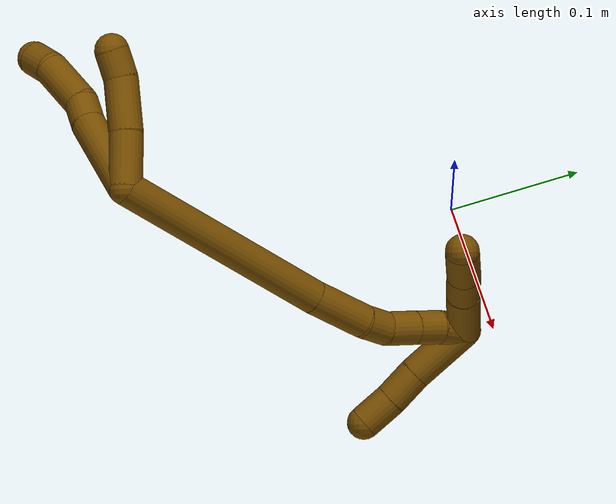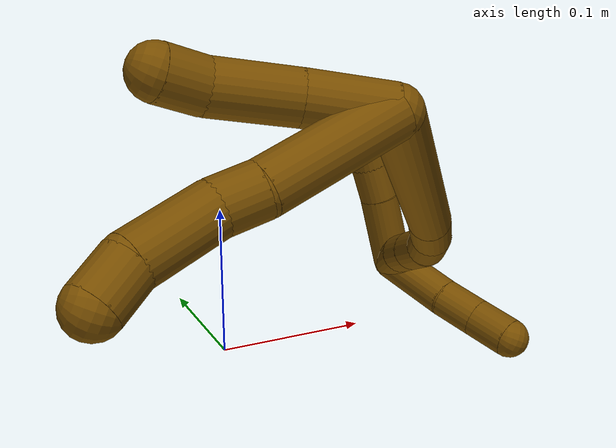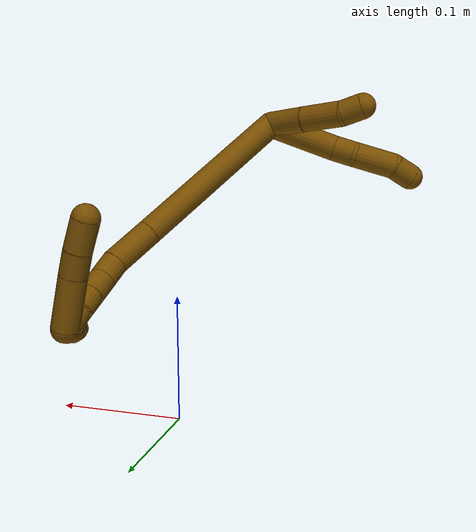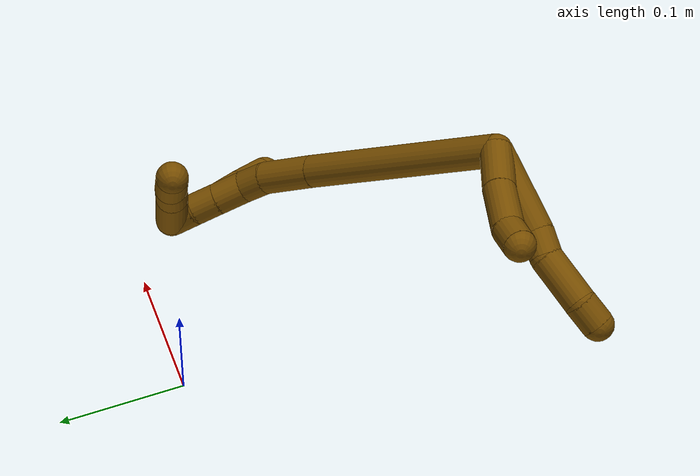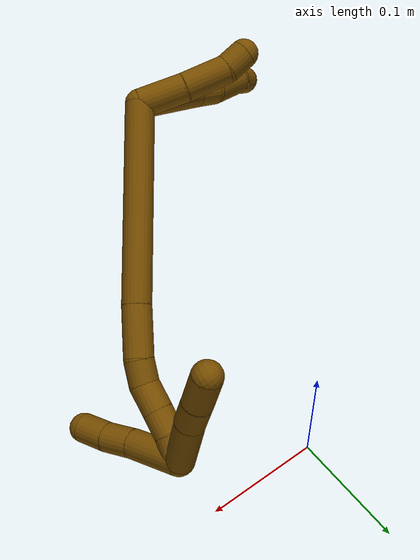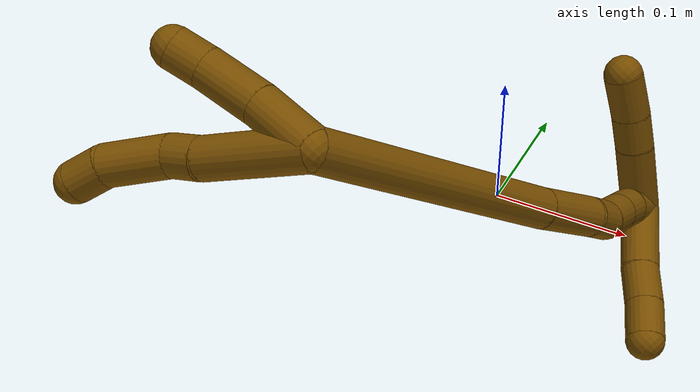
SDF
<sdf version="1.7">
 <world name="default">
  <model name="12">
   <static>0</static>
   <link name="12">
    <collision name="collision-cylinder-e_1_2_8">
     <pose>0.002678 -0.025815 -0.021789 2.27182 0.079124 0.170002</pose>
     <geometry><cylinder><radius>0.0125</radius><length>0.067774</length></cylinder></geometry>
     <surface>
      <friction><ode><mu>1.16</mu><mu2>1.16</mu2><slip1>0</slip1><slip2>0</slip2></ode></friction>
      <contact><ode><kp>1e+06</kp><kd>1</kd><max_vel>0</max_vel><min_depth>0.001</min_depth></ode></contact>
     </surface>
    </collision>
    <visual name="visual-cylinder-e_1_2_8">
     <pose>0.002678 -0.025815 -0.021789 2.27182 0.079124 0.170002</pose>
     <geometry><cylinder><radius>0.0125</radius><length>0.067774</length></cylinder></geometry>
     <material><ambient>0.466667 0.301961 0 1</ambient></material>
    </visual>
    <collision name="collision-cylinder-e_2_8_9">
     <pose>0.007171 -0.058255 -0.051063 2.41711 0.179482 0.46625</pose>
     <geometry><cylinder><radius>0.0125</radius><length>0.02032</length></cylinder></geometry>
     <surface>
      <friction><ode><mu>1.16</mu><mu2>1.16</mu2><slip1>0</slip1><slip2>0</slip2></ode></friction>
      <contact><ode><kp>1e+06</kp><kd>1</kd><max_vel>0</max_vel><min_depth>0.001</min_depth></ode></contact>
     </surface>
    </collision>
    <visual name="visual-cylinder-e_2_8_9">
     <pose>0.007171 -0.058255 -0.051063 2.41711 0.179482 0.46625</pose>
     <geometry><cylinder><radius>0.0125</radius><length>0.02032</length></cylinder></geometry>
     <material><ambient>0.466667 0.301961 0 1</ambient></material>
    </visual>
    <collision name="collision-cylinder-e_3_9_10">
     <pose>0.007151 -0.081015 -0.070844 2.22194 -0.090153 -0.181664</pose>
     <geometry><cylinder><radius>0.0125</radius><length>0.040735</length></cylinder></geometry>
     <surface>
      <friction><ode><mu>1.16</mu><mu2>1.16</mu2><slip1>0</slip1><slip2>0</slip2></ode></friction>
      <contact><ode><kp>1e+06</kp><kd>1</kd><max_vel>0</max_vel><min_depth>0.001</min_depth></ode></contact>
     </surface>
    </collision>
    <visual name="visual-cylinder-e_3_9_10">
     <pose>0.007151 -0.081015 -0.070844 2.22194 -0.090153 -0.181664</pose>
     <geometry><cylinder><radius>0.0125</radius><length>0.040735</length></cylinder></geometry>
     <material><ambient>0.466667 0.301961 0 1</ambient></material>
    </visual>
    <collision name="collision-cylinder-e_4_10_6">
     <pose>0.004857 -0.107109 -0.086693 1.91356 -0.043506 -0.061708</pose>
     <geometry><cylinder><radius>0.0125</radius><length>0.021171</length></cylinder></geometry>
     <surface>
      <friction><ode><mu>1.16</mu><mu2>1.16</mu2><slip1>0</slip1><slip2>0</slip2></ode></friction>
      <contact><ode><kp>1e+06</kp><kd>1</kd><max_vel>0</max_vel><min_depth>0.001</min_depth></ode></contact>
     </surface>
    </collision>
    <visual name="visual-cylinder-e_4_10_6">
     <pose>0.004857 -0.107109 -0.086693 1.91356 -0.043506 -0.061708</pose>
     <geometry><cylinder><radius>0.0125</radius><length>0.021171</length></cylinder></geometry>
     <material><ambient>0.466667 0.301961 0 1</ambient></material>
    </visual>
    <collision name="collision-cylinder-e_1_2_11">
     <pose>0.003787 -0.003651 -0.019165 2.95334 0.191709 1.58911</pose>
     <geometry><cylinder><radius>0.0125</radius><length>0.039749</length></cylinder></geometry>
     <surface>
      <friction><ode><mu>1.16</mu><mu2>1.16</mu2><slip1>0</slip1><slip2>0</slip2></ode></friction>
      <contact><ode><kp>1e+06</kp><kd>1</kd><max_vel>0</max_vel><min_depth>0.001</min_depth></ode></contact>
     </surface>
    </collision>
    <visual name="visual-cylinder-e_1_2_11">
     <pose>0.003787 -0.003651 -0.019165 2.95334 0.191709 1.58911</pose>
     <geometry><cylinder><radius>0.0125</radius><length>0.039749</length></cylinder></geometry>
     <material><ambient>0.466667 0.301961 0 1</ambient></material>
    </visual>
    <collision name="collision-cylinder-e_2_11_12">
     <pose>0.009718 -0.012232 -0.057292 2.88722 0.109009 0.806546</pose>
     <geometry><cylinder><radius>0.0125</radius><length>0.039417</length></cylinder></geometry>
     <surface>
      <friction><ode><mu>1.16</mu><mu2>1.16</mu2><slip1>0</slip1><slip2>0</slip2></ode></friction>
      <contact><ode><kp>1e+06</kp><kd>1</kd><max_vel>0</max_vel><min_depth>0.001</min_depth></ode></contact>
     </surface>
    </collision>
    <visual name="visual-cylinder-e_2_11_12">
     <pose>0.009718 -0.012232 -0.057292 2.88722 0.109009 0.806546</pose>
     <geometry><cylinder><radius>0.0125</radius><length>0.039417</length></cylinder></geometry>
     <material><ambient>0.466667 0.301961 0 1</ambient></material>
    </visual>
    <collision name="collision-cylinder-e_3_12_5">
     <pose>0.009874 -0.019329 -0.086247 2.92805 -0.192001 -1.46391</pose>
     <geometry><cylinder><radius>0.0125</radius><length>0.020835</length></cylinder></geometry>
     <surface>
      <friction><ode><mu>1.16</mu><mu2>1.16</mu2><slip1>0</slip1><slip2>0</slip2></ode></friction>
      <contact><ode><kp>1e+06</kp><kd>1</kd><max_vel>0</max_vel><min_depth>0.001</min_depth></ode></contact>
     </surface>
    </collision>
    <visual name="visual-cylinder-e_3_12_5">
     <pose>0.009874 -0.019329 -0.086247 2.92805 -0.192001 -1.46391</pose>
     <geometry><cylinder><radius>0.0125</radius><length>0.020835</length></cylinder></geometry>
     <material><ambient>0.466667 0.301961 0 1</ambient></material>
    </visual>
    <collision name="collision-cylinder-e_1_2_13">
     <pose>0.071291 0.012603 0.044131 -0.278181 0.998809 -0.152446</pose>
     <geometry><cylinder><radius>0.0125</radius><length>0.169573</length></cylinder></geometry>
     <surface>
      <friction><ode><mu>1.16</mu><mu2>1.16</mu2><slip1>0</slip1><slip2>0</slip2></ode></friction>
      <contact><ode><kp>1e+06</kp><kd>1</kd><max_vel>0</max_vel><min_depth>0.001</min_depth></ode></contact>
     </surface>
    </collision>
    <visual name="visual-cylinder-e_1_2_13">
     <pose>0.071291 0.012603 0.044131 -0.278181 0.998809 -0.152446</pose>
     <geometry><cylinder><radius>0.0125</radius><length>0.169573</length></cylinder></geometry>
     <material><ambient>0.466667 0.301961 0 1</ambient></material>
    </visual>
    <collision name="collision-cylinder-e_2_13_14">
     <pose>0.161619 0.029013 0.0985 -0.355942 1.04991 -0.207602</pose>
     <geometry><cylinder><radius>0.0125</radius><length>0.043897</length></cylinder></geometry>
     <surface>
      <friction><ode><mu>1.16</mu><mu2>1.16</mu2><slip1>0</slip1><slip2>0</slip2></ode></friction>
      <contact><ode><kp>1e+06</kp><kd>1</kd><max_vel>0</max_vel><min_depth>0.001</min_depth></ode></contact>
     </surface>
    </collision>
    <visual name="visual-cylinder-e_2_13_14">
     <pose>0.161619 0.029013 0.0985 -0.355942 1.04991 -0.207602</pose>
     <geometry><cylinder><radius>0.0125</radius><length>0.043897</length></cylinder></geometry>
     <material><ambient>0.466667 0.301961 0 1</ambient></material>
    </visual>
    <collision name="collision-cylinder-e_3_14_15">
     <pose>0.190388 0.03307 0.112185 -0.072788 1.22955 -0.051403</pose>
     <geometry><cylinder><radius>0.0125</radius><length>0.020654</length></cylinder></geometry>
     <surface>
      <friction><ode><mu>1.16</mu><mu2>1.16</mu2><slip1>0</slip1><slip2>0</slip2></ode></friction>
      <contact><ode><kp>1e+06</kp><kd>1</kd><max_vel>0</max_vel><min_depth>0.001</min_depth></ode></contact>
     </surface>
    </collision>
    <visual name="visual-cylinder-e_3_14_15">
     <pose>0.190388 0.03307 0.112185 -0.072788 1.22955 -0.051403</pose>
     <geometry><cylinder><radius>0.0125</radius><length>0.020654</length></cylinder></geometry>
     <material><ambient>0.466667 0.301961 0 1</ambient></material>
    </visual>
    <collision name="collision-cylinder-e_4_15_16">
     <pose>0.211815 0.035224 0.116179 -1.29068 1.40309 -1.13313</pose>
     <geometry><cylinder><radius>0.0125</radius><length>0.023722</length></cylinder></geometry>
     <surface>
      <friction><ode><mu>1.16</mu><mu2>1.16</mu2><slip1>0</slip1><slip2>0</slip2></ode></friction>
      <contact><ode><kp>1e+06</kp><kd>1</kd><max_vel>0</max_vel><min_depth>0.001</min_depth></ode></contact>
     </surface>
    </collision>
    <visual name="visual-cylinder-e_4_15_16">
     <pose>0.211815 0.035224 0.116179 -1.29068 1.40309 -1.13313</pose>
     <geometry><cylinder><radius>0.0125</radius><length>0.023722</length></cylinder></geometry>
     <material><ambient>0.466667 0.301961 0 1</ambient></material>
    </visual>
    <collision name="collision-cylinder-e_5_16_17">
     <pose>0.2336 0.038738 0.117338 -1.20806 1.40164 -1.05446</pose>
     <geometry><cylinder><radius>0.0125</radius><length>0.020474</length></cylinder></geometry>
     <surface>
      <friction><ode><mu>1.16</mu><mu2>1.16</mu2><slip1>0</slip1><slip2>0</slip2></ode></friction>
      <contact><ode><kp>1e+06</kp><kd>1</kd><max_vel>0</max_vel><min_depth>0.001</min_depth></ode></contact>
     </surface>
    </collision>
    <visual name="visual-cylinder-e_5_16_17">
     <pose>0.2336 0.038738 0.117338 -1.20806 1.40164 -1.05446</pose>
     <geometry><cylinder><radius>0.0125</radius><length>0.020474</length></cylinder></geometry>
     <material><ambient>0.466667 0.301961 0 1</ambient></material>
    </visual>
    <collision name="collision-cylinder-e_6_17_1">
     <pose>0.254313 0.041067 0.119993 -0.337618 1.36966 -0.276597</pose>
     <geometry><cylinder><radius>0.0125</radius><length>0.021679</length></cylinder></geometry>
     <surface>
      <friction><ode><mu>1.16</mu><mu2>1.16</mu2><slip1>0</slip1><slip2>0</slip2></ode></friction>
      <contact><ode><kp>1e+06</kp><kd>1</kd><max_vel>0</max_vel><min_depth>0.001</min_depth></ode></contact>
     </surface>
    </collision>
    <visual name="visual-cylinder-e_6_17_1">
     <pose>0.254313 0.041067 0.119993 -0.337618 1.36966 -0.276597</pose>
     <geometry><cylinder><radius>0.0125</radius><length>0.021679</length></cylinder></geometry>
     <material><ambient>0.466667 0.301961 0 1</ambient></material>
    </visual>
    <collision name="collision-cylinder-e_1_1_18">
     <pose>0.253416 0.057036 0.107291 -2.33932 -0.497375 1.07898</pose>
     <geometry><cylinder><radius>0.0125</radius><length>0.048279</length></cylinder></geometry>
     <surface>
      <friction><ode><mu>1.16</mu><mu2>1.16</mu2><slip1>0</slip1><slip2>0</slip2></ode></friction>
      <contact><ode><kp>1e+06</kp><kd>1</kd><max_vel>0</max_vel><min_depth>0.001</min_depth></ode></contact>
     </surface>
    </collision>
    <visual name="visual-cylinder-e_1_1_18">
     <pose>0.253416 0.057036 0.107291 -2.33932 -0.497375 1.07898</pose>
     <geometry><cylinder><radius>0.0125</radius><length>0.048279</length></cylinder></geometry>
     <material><ambient>0.466667 0.301961 0 1</ambient></material>
    </visual>
    <collision name="collision-cylinder-e_2_18_19">
     <pose>0.23697 0.079463 0.084975 -2.38297 -0.441465 1.02542</pose>
     <geometry><cylinder><radius>0.0125</radius><length>0.023071</length></cylinder></geometry>
     <surface>
      <friction><ode><mu>1.16</mu><mu2>1.16</mu2><slip1>0</slip1><slip2>0</slip2></ode></friction>
      <contact><ode><kp>1e+06</kp><kd>1</kd><max_vel>0</max_vel><min_depth>0.001</min_depth></ode></contact>
     </surface>
    </collision>
    <visual name="visual-cylinder-e_2_18_19">
     <pose>0.23697 0.079463 0.084975 -2.38297 -0.441465 1.02542</pose>
     <geometry><cylinder><radius>0.0125</radius><length>0.023071</length></cylinder></geometry>
     <material><ambient>0.466667 0.301961 0 1</ambient></material>
    </visual>
    <collision name="collision-cylinder-e_3_19_4">
     <pose>0.225407 0.09484 0.067715 -2.43919 -0.481551 1.18083</pose>
     <geometry><cylinder><radius>0.0125</radius><length>0.02865</length></cylinder></geometry>
     <surface>
      <friction><ode><mu>1.16</mu><mu2>1.16</mu2><slip1>0</slip1><slip2>0</slip2></ode></friction>
      <contact><ode><kp>1e+06</kp><kd>1</kd><max_vel>0</max_vel><min_depth>0.001</min_depth></ode></contact>
     </surface>
    </collision>
    <visual name="visual-cylinder-e_3_19_4">
     <pose>0.225407 0.09484 0.067715 -2.43919 -0.481551 1.18083</pose>
     <geometry><cylinder><radius>0.0125</radius><length>0.02865</length></cylinder></geometry>
     <material><ambient>0.466667 0.301961 0 1</ambient></material>
    </visual>
    <collision name="collision-cylinder-e_1_1_20">
     <pose>0.250304 0.030411 0.137211 0.643152 -0.657119 -0.226176</pose>
     <geometry><cylinder><radius>0.0125</radius><length>0.047902</length></cylinder></geometry>
     <surface>
      <friction><ode><mu>1.16</mu><mu2>1.16</mu2><slip1>0</slip1><slip2>0</slip2></ode></friction>
      <contact><ode><kp>1e+06</kp><kd>1</kd><max_vel>0</max_vel><min_depth>0.001</min_depth></ode></contact>
     </surface>
    </collision>
    <visual name="visual-cylinder-e_1_1_20">
     <pose>0.250304 0.030411 0.137211 0.643152 -0.657119 -0.226176</pose>
     <geometry><cylinder><radius>0.0125</radius><length>0.047902</length></cylinder></geometry>
     <material><ambient>0.466667 0.301961 0 1</ambient></material>
    </visual>
    <collision name="collision-cylinder-e_2_20_21">
     <pose>0.228156 0.013701 0.16159 0.525534 -0.615088 -0.170458</pose>
     <geometry><cylinder><radius>0.0125</radius><length>0.026057</length></cylinder></geometry>
     <surface>
      <friction><ode><mu>1.16</mu><mu2>1.16</mu2><slip1>0</slip1><slip2>0</slip2></ode></friction>
      <contact><ode><kp>1e+06</kp><kd>1</kd><max_vel>0</max_vel><min_depth>0.001</min_depth></ode></contact>
     </surface>
    </collision>
    <visual name="visual-cylinder-e_2_20_21">
     <pose>0.228156 0.013701 0.16159 0.525534 -0.615088 -0.170458</pose>
     <geometry><cylinder><radius>0.0125</radius><length>0.026057</length></cylinder></geometry>
     <material><ambient>0.466667 0.301961 0 1</ambient></material>
    </visual>
    <collision name="collision-cylinder-e_3_21_3">
     <pose>0.212104 0.002829 0.178925 0.597633 -0.714697 -0.229025</pose>
     <geometry><cylinder><radius>0.0125</radius><length>0.026041</length></cylinder></geometry>
     <surface>
      <friction><ode><mu>1.16</mu><mu2>1.16</mu2><slip1>0</slip1><slip2>0</slip2></ode></friction>
      <contact><ode><kp>1e+06</kp><kd>1</kd><max_vel>0</max_vel><min_depth>0.001</min_depth></ode></contact>
     </surface>
    </collision>
    <visual name="visual-cylinder-e_3_21_3">
     <pose>0.212104 0.002829 0.178925 0.597633 -0.714697 -0.229025</pose>
     <geometry><cylinder><radius>0.0125</radius><length>0.026041</length></cylinder></geometry>
     <material><ambient>0.466667 0.301961 0 1</ambient></material>
    </visual>
    <collision name="collision-sphere-3">
     <pose>0.203571 -0.002705 0.187054 0 -0 0</pose>
     <geometry><sphere><radius>0.0125</radius></sphere></geometry>
     <surface>
      <friction><ode><mu>1.16</mu><mu2>1.16</mu2><slip1>0</slip1><slip2>0</slip2></ode></friction>
      <contact><ode><kp>1e+06</kp><kd>1</kd><max_vel>0</max_vel><min_depth>0.001</min_depth></ode></contact>
     </surface>
    </collision>
    <visual name="visual-sphere-3">
     <pose>0.203571 -0.002705 0.187054 0 -0 0</pose>
     <geometry><sphere><radius>0.0125</radius></sphere></geometry>
     <material><ambient>0.466667 0.301961 0 1</ambient></material>
    </visual>
    <collision name="collision-sphere-21">
     <pose>0.220638 0.008363 0.170795 0 -0 0</pose>
     <geometry><sphere><radius>0.0125</radius></sphere></geometry>
     <surface>
      <friction><ode><mu>1.16</mu><mu2>1.16</mu2><slip1>0</slip1><slip2>0</slip2></ode></friction>
      <contact><ode><kp>1e+06</kp><kd>1</kd><max_vel>0</max_vel><min_depth>0.001</min_depth></ode></contact>
     </surface>
    </collision>
    <visual name="visual-sphere-21">
     <pose>0.220638 0.008363 0.170795 0 -0 0</pose>
     <geometry><sphere><radius>0.0125</radius></sphere></geometry>
     <material><ambient>0.466667 0.301961 0 1</ambient></material>
    </visual>
    <collision name="collision-sphere-20">
     <pose>0.235673 0.019039 0.152386 0 -0 0</pose>
     <geometry><sphere><radius>0.0125</radius></sphere></geometry>
     <surface>
      <friction><ode><mu>1.16</mu><mu2>1.16</mu2><slip1>0</slip1><slip2>0</slip2></ode></friction>
      <contact><ode><kp>1e+06</kp><kd>1</kd><max_vel>0</max_vel><min_depth>0.001</min_depth></ode></contact>
     </surface>
    </collision>
    <visual name="visual-sphere-20">
     <pose>0.235673 0.019039 0.152386 0 -0 0</pose>
     <geometry><sphere><radius>0.0125</radius></sphere></geometry>
     <material><ambient>0.466667 0.301961 0 1</ambient></material>
    </visual>
    <collision name="collision-sphere-4">
     <pose>0.218772 0.103042 0.058024 0 -0 0</pose>
     <geometry><sphere><radius>0.0125</radius></sphere></geometry>
     <surface>
      <friction><ode><mu>1.16</mu><mu2>1.16</mu2><slip1>0</slip1><slip2>0</slip2></ode></friction>
      <contact><ode><kp>1e+06</kp><kd>1</kd><max_vel>0</max_vel><min_depth>0.001</min_depth></ode></contact>
     </surface>
    </collision>
    <visual name="visual-sphere-4">
     <pose>0.218772 0.103042 0.058024 0 -0 0</pose>
     <geometry><sphere><radius>0.0125</radius></sphere></geometry>
     <material><ambient>0.466667 0.301961 0 1</ambient></material>
    </visual>
    <collision name="collision-sphere-11">
     <pose>0.007574 -0.007302 -0.038331 0 -0 0</pose>
     <geometry><sphere><radius>0.0125</radius></sphere></geometry>
     <surface>
      <friction><ode><mu>1.16</mu><mu2>1.16</mu2><slip1>0</slip1><slip2>0</slip2></ode></friction>
      <contact><ode><kp>1e+06</kp><kd>1</kd><max_vel>0</max_vel><min_depth>0.001</min_depth></ode></contact>
     </surface>
    </collision>
    <visual name="visual-sphere-11">
     <pose>0.007574 -0.007302 -0.038331 0 -0 0</pose>
     <geometry><sphere><radius>0.0125</radius></sphere></geometry>
     <material><ambient>0.466667 0.301961 0 1</ambient></material>
    </visual>
    <collision name="collision-sphere-6">
     <pose>0.004396 -0.11707 -0.090247 0 -0 0</pose>
     <geometry><sphere><radius>0.0125</radius></sphere></geometry>
     <surface>
      <friction><ode><mu>1.16</mu><mu2>1.16</mu2><slip1>0</slip1><slip2>0</slip2></ode></friction>
      <contact><ode><kp>1e+06</kp><kd>1</kd><max_vel>0</max_vel><min_depth>0.001</min_depth></ode></contact>
     </surface>
    </collision>
    <visual name="visual-sphere-6">
     <pose>0.004396 -0.11707 -0.090247 0 -0 0</pose>
     <geometry><sphere><radius>0.0125</radius></sphere></geometry>
     <material><ambient>0.466667 0.301961 0 1</ambient></material>
    </visual>
    <collision name="collision-sphere-10">
     <pose>0.005317 -0.097149 -0.083138 0 -0 0</pose>
     <geometry><sphere><radius>0.0125</radius></sphere></geometry>
     <surface>
      <friction><ode><mu>1.16</mu><mu2>1.16</mu2><slip1>0</slip1><slip2>0</slip2></ode></friction>
      <contact><ode><kp>1e+06</kp><kd>1</kd><max_vel>0</max_vel><min_depth>0.001</min_depth></ode></contact>
     </surface>
    </collision>
    <visual name="visual-sphere-10">
     <pose>0.005317 -0.097149 -0.083138 0 -0 0</pose>
     <geometry><sphere><radius>0.0125</radius></sphere></geometry>
     <material><ambient>0.466667 0.301961 0 1</ambient></material>
    </visual>
    <collision name="collision-sphere-9">
     <pose>0.008984 -0.06488 -0.058549 0 -0 0</pose>
     <geometry><sphere><radius>0.0125</radius></sphere></geometry>
     <surface>
      <friction><ode><mu>1.16</mu><mu2>1.16</mu2><slip1>0</slip1><slip2>0</slip2></ode></friction>
      <contact><ode><kp>1e+06</kp><kd>1</kd><max_vel>0</max_vel><min_depth>0.001</min_depth></ode></contact>
     </surface>
    </collision>
    <visual name="visual-sphere-9">
     <pose>0.008984 -0.06488 -0.058549 0 -0 0</pose>
     <geometry><sphere><radius>0.0125</radius></sphere></geometry>
     <material><ambient>0.466667 0.301961 0 1</ambient></material>
    </visual>
    <collision name="collision-sphere-2">
     <geometry><sphere><radius>0.0125</radius></sphere></geometry>
     <surface>
      <friction><ode><mu>1.16</mu><mu2>1.16</mu2><slip1>0</slip1><slip2>0</slip2></ode></friction>
      <contact><ode><kp>1e+06</kp><kd>1</kd><max_vel>0</max_vel><min_depth>0.001</min_depth></ode></contact>
     </surface>
    </collision>
    <visual name="visual-sphere-2">
     <geometry><sphere><radius>0.0125</radius></sphere></geometry>
     <material><ambient>0.466667 0.301961 0 1</ambient></material>
    </visual>
    <collision name="collision-sphere-19">
     <pose>0.232041 0.086638 0.077406 0 -0 0</pose>
     <geometry><sphere><radius>0.0125</radius></sphere></geometry>
     <surface>
      <friction><ode><mu>1.16</mu><mu2>1.16</mu2><slip1>0</slip1><slip2>0</slip2></ode></friction>
      <contact><ode><kp>1e+06</kp><kd>1</kd><max_vel>0</max_vel><min_depth>0.001</min_depth></ode></contact>
     </surface>
    </collision>
    <visual name="visual-sphere-19">
     <pose>0.232041 0.086638 0.077406 0 -0 0</pose>
     <geometry><sphere><radius>0.0125</radius></sphere></geometry>
     <material><ambient>0.466667 0.301961 0 1</ambient></material>
    </visual>
    <collision name="collision-sphere-8">
     <pose>0.005357 -0.05163 -0.043577 0 -0 0</pose>
     <geometry><sphere><radius>0.0125</radius></sphere></geometry>
     <surface>
      <friction><ode><mu>1.16</mu><mu2>1.16</mu2><slip1>0</slip1><slip2>0</slip2></ode></friction>
      <contact><ode><kp>1e+06</kp><kd>1</kd><max_vel>0</max_vel><min_depth>0.001</min_depth></ode></contact>
     </surface>
    </collision>
    <visual name="visual-sphere-8">
     <pose>0.005357 -0.05163 -0.043577 0 -0 0</pose>
     <geometry><sphere><radius>0.0125</radius></sphere></geometry>
     <material><ambient>0.466667 0.301961 0 1</ambient></material>
    </visual>
    <collision name="collision-sphere-12">
     <pose>0.011862 -0.017162 -0.076253 0 -0 0</pose>
     <geometry><sphere><radius>0.0125</radius></sphere></geometry>
     <surface>
      <friction><ode><mu>1.16</mu><mu2>1.16</mu2><slip1>0</slip1><slip2>0</slip2></ode></friction>
      <contact><ode><kp>1e+06</kp><kd>1</kd><max_vel>0</max_vel><min_depth>0.001</min_depth></ode></contact>
     </surface>
    </collision>
    <visual name="visual-sphere-12">
     <pose>0.011862 -0.017162 -0.076253 0 -0 0</pose>
     <geometry><sphere><radius>0.0125</radius></sphere></geometry>
     <material><ambient>0.466667 0.301961 0 1</ambient></material>
    </visual>
    <collision name="collision-sphere-5">
     <pose>0.007886 -0.021496 -0.09624 0 -0 0</pose>
     <geometry><sphere><radius>0.0125</radius></sphere></geometry>
     <surface>
      <friction><ode><mu>1.16</mu><mu2>1.16</mu2><slip1>0</slip1><slip2>0</slip2></ode></friction>
      <contact><ode><kp>1e+06</kp><kd>1</kd><max_vel>0</max_vel><min_depth>0.001</min_depth></ode></contact>
     </surface>
    </collision>
    <visual name="visual-sphere-5">
     <pose>0.007886 -0.021496 -0.09624 0 -0 0</pose>
     <geometry><sphere><radius>0.0125</radius></sphere></geometry>
     <material><ambient>0.466667 0.301961 0 1</ambient></material>
    </visual>
    <collision name="collision-sphere-13">
     <pose>0.142582 0.025206 0.088262 0 -0 0</pose>
     <geometry><sphere><radius>0.0125</radius></sphere></geometry>
     <surface>
      <friction><ode><mu>1.16</mu><mu2>1.16</mu2><slip1>0</slip1><slip2>0</slip2></ode></friction>
      <contact><ode><kp>1e+06</kp><kd>1</kd><max_vel>0</max_vel><min_depth>0.001</min_depth></ode></contact>
     </surface>
    </collision>
    <visual name="visual-sphere-13">
     <pose>0.142582 0.025206 0.088262 0 -0 0</pose>
     <geometry><sphere><radius>0.0125</radius></sphere></geometry>
     <material><ambient>0.466667 0.301961 0 1</ambient></material>
    </visual>
    <collision name="collision-sphere-14">
     <pose>0.180657 0.032819 0.108738 0 -0 0</pose>
     <geometry><sphere><radius>0.0125</radius></sphere></geometry>
     <surface>
      <friction><ode><mu>1.16</mu><mu2>1.16</mu2><slip1>0</slip1><slip2>0</slip2></ode></friction>
      <contact><ode><kp>1e+06</kp><kd>1</kd><max_vel>0</max_vel><min_depth>0.001</min_depth></ode></contact>
     </surface>
    </collision>
    <visual name="visual-sphere-14">
     <pose>0.180657 0.032819 0.108738 0 -0 0</pose>
     <geometry><sphere><radius>0.0125</radius></sphere></geometry>
     <material><ambient>0.466667 0.301961 0 1</ambient></material>
    </visual>
    <collision name="collision-sphere-15">
     <pose>0.20012 0.033322 0.115632 0 -0 0</pose>
     <geometry><sphere><radius>0.0125</radius></sphere></geometry>
     <surface>
      <friction><ode><mu>1.16</mu><mu2>1.16</mu2><slip1>0</slip1><slip2>0</slip2></ode></friction>
      <contact><ode><kp>1e+06</kp><kd>1</kd><max_vel>0</max_vel><min_depth>0.001</min_depth></ode></contact>
     </surface>
    </collision>
    <visual name="visual-sphere-15">
     <pose>0.20012 0.033322 0.115632 0 -0 0</pose>
     <geometry><sphere><radius>0.0125</radius></sphere></geometry>
     <material><ambient>0.466667 0.301961 0 1</ambient></material>
    </visual>
    <collision name="collision-sphere-16">
     <pose>0.223509 0.037127 0.116727 0 -0 0</pose>
     <geometry><sphere><radius>0.0125</radius></sphere></geometry>
     <surface>
      <friction><ode><mu>1.16</mu><mu2>1.16</mu2><slip1>0</slip1><slip2>0</slip2></ode></friction>
      <contact><ode><kp>1e+06</kp><kd>1</kd><max_vel>0</max_vel><min_depth>0.001</min_depth></ode></contact>
     </surface>
    </collision>
    <visual name="visual-sphere-16">
     <pose>0.223509 0.037127 0.116727 0 -0 0</pose>
     <geometry><sphere><radius>0.0125</radius></sphere></geometry>
     <material><ambient>0.466667 0.301961 0 1</ambient></material>
    </visual>
    <collision name="collision-sphere-17">
     <pose>0.243692 0.040349 0.11795 0 -0 0</pose>
     <geometry><sphere><radius>0.0125</radius></sphere></geometry>
     <surface>
      <friction><ode><mu>1.16</mu><mu2>1.16</mu2><slip1>0</slip1><slip2>0</slip2></ode></friction>
      <contact><ode><kp>1e+06</kp><kd>1</kd><max_vel>0</max_vel><min_depth>0.001</min_depth></ode></contact>
     </surface>
    </collision>
    <visual name="visual-sphere-17">
     <pose>0.243692 0.040349 0.11795 0 -0 0</pose>
     <geometry><sphere><radius>0.0125</radius></sphere></geometry>
     <material><ambient>0.466667 0.301961 0 1</ambient></material>
    </visual>
    <collision name="collision-sphere-1">
     <pose>0.264934 0.041784 0.122036 0 -0 0</pose>
     <geometry><sphere><radius>0.0125</radius></sphere></geometry>
     <surface>
      <friction><ode><mu>1.16</mu><mu2>1.16</mu2><slip1>0</slip1><slip2>0</slip2></ode></friction>
      <contact><ode><kp>1e+06</kp><kd>1</kd><max_vel>0</max_vel><min_depth>0.001</min_depth></ode></contact>
     </surface>
    </collision>
    <visual name="visual-sphere-1">
     <pose>0.264934 0.041784 0.122036 0 -0 0</pose>
     <geometry><sphere><radius>0.0125</radius></sphere></geometry>
     <material><ambient>0.466667 0.301961 0 1</ambient></material>
    </visual>
    <collision name="collision-sphere-18">
     <pose>0.241899 0.072288 0.092545 0 -0 0</pose>
     <geometry><sphere><radius>0.0125</radius></sphere></geometry>
     <surface>
      <friction><ode><mu>1.16</mu><mu2>1.16</mu2><slip1>0</slip1><slip2>0</slip2></ode></friction>
      <contact><ode><kp>1e+06</kp><kd>1</kd><max_vel>0</max_vel><min_depth>0.001</min_depth></ode></contact>
     </surface>
    </collision>
    <visual name="visual-sphere-18">
     <pose>0.241899 0.072288 0.092545 0 -0 0</pose>
     <geometry><sphere><radius>0.0125</radius></sphere></geometry>
     <material><ambient>0.466667 0.301961 0 1</ambient></material>
    </visual>
    <inertial>
     <pose>0.116687 0.008364 0.045806 0 -0 0</pose>
     <mass>0.75</mass>
     <inertia>
      <ixx>0.00029</ixx>
      <ixy>0</ixy>
      <ixz>0</ixz>
      <iyy>0.00039</iyy>
      <iyz>0</iyz>
      <izz>-0.000386</izz>
     </inertia>
    </inertial>
   </link>
   <pose>-0.007928 -0.245761 0.215036 2.09067 0.548271 1.59672</pose>
  </model>
 </world>
</sdf>
